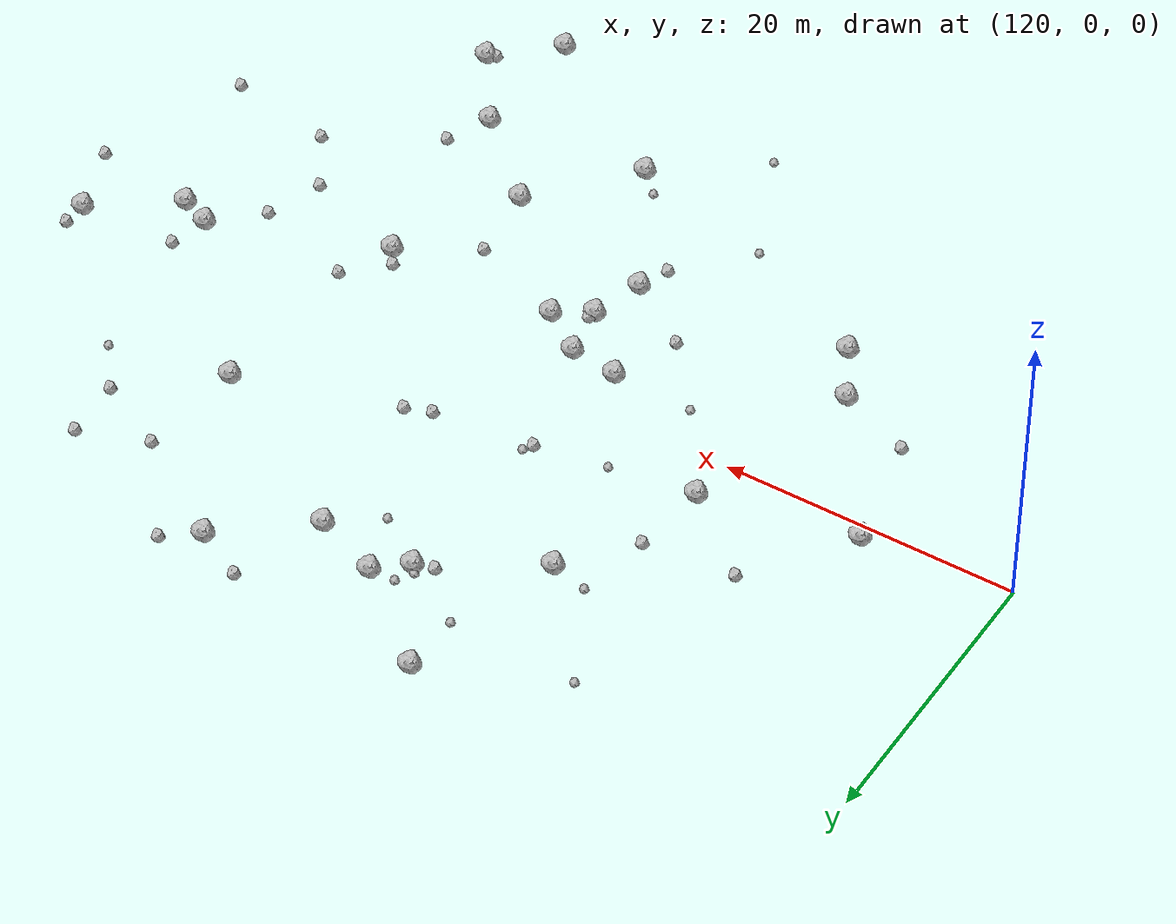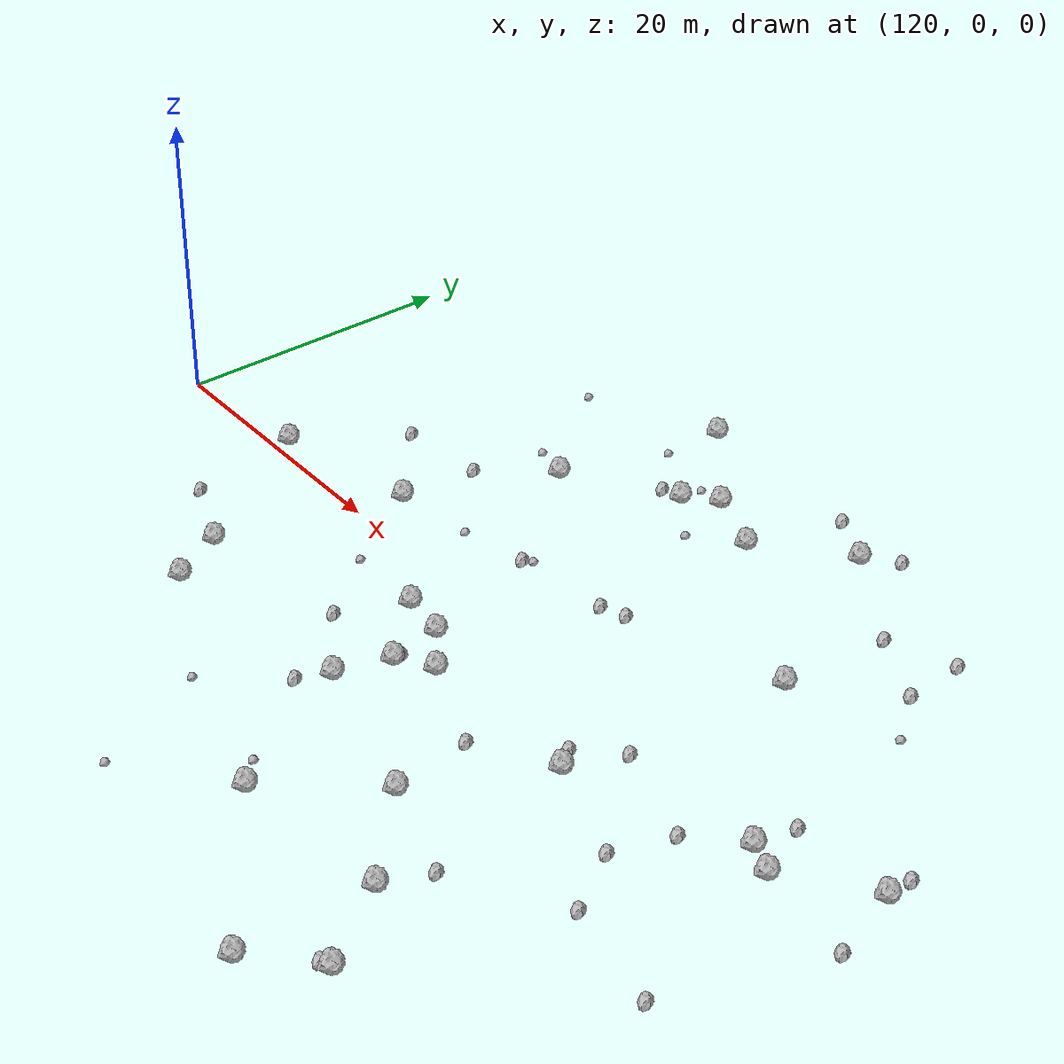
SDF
<sdf version="1.6">
 <world name="default">
  <include><uri>model://sun</uri></include>
  <model name="rock1_4_2">
   <include><uri>model://rock1</uri><pose>170.381376848534 9.950127114190494 0.5 0 0 0</pose></include>
  </model>
  <model name="rock1_4_3">
   <include><uri>model://rock1</uri><pose>158.18441223294488 17.595957075521092 0.5 0 0 0</pose></include>
  </model>
  <model name="rock1_4_4">
   <include><uri>model://rock1</uri><pose>156.5218076970509 -5.668073426327915 0.5 0 0 0</pose></include>
  </model>
  <model name="rock1_4_5">
   <include><uri>model://rock1</uri><pose>150.16187965976636 -3.034354028197857 0.5 0 0 0</pose></include>
  </model>
  <model name="rock1_4_6">
   <include><uri>model://rock1</uri><pose>187.46382854505651 2.0620324148873976 0.5 0 0 0</pose></include>
  </model>
  <model name="rock1_4_7">
   <include><uri>model://rock1</uri><pose>147.19947589870367 24.649829652033148 0.5 0 0 0</pose></include>
  </model>
  <model name="rock1_4_8">
   <include><uri>model://rock1</uri><pose>138.95702651588326 -12.87728538880814 0.5 0 0 0</pose></include>
  </model>
  <model name="rock1_4_9">
   <include><uri>model://rock1</uri><pose>169.7074308208911 -28.31016310644732 0.5 0 0 0</pose></include>
  </model>
  <model name="rock1_4_10">
   <include><uri>model://rock1</uri><pose>158.6004397056147 -20.482836064724115 0.5 0 0 0</pose></include>
  </model>
  <model name="rock1_4_11">
   <include><uri>model://rock1</uri><pose>140.31905976928272 3.2931575944841995 0.5 0 0 0</pose></include>
  </model>
  <model name="rock1_4_12">
   <include><uri>model://rock1</uri><pose>153.1235600156279 -10.853350835858315 0.5 0 0 0</pose></include>
  </model>
  <model name="rock1_4_13">
   <include><uri>model://rock1</uri><pose>136.86845818447063 -9.098250446023755 0.5 0 0 0</pose></include>
  </model>
  <model name="rock1_4_14">
   <include><uri>model://rock1</uri><pose>154.17387334834618 -7.17409651253633 0.5 0 0 0</pose></include>
  </model>
  <model name="rock1_4_15">
   <include><uri>model://rock1</uri><pose>182.11766773886035 -1.890253871768877 0.5 0 0 0</pose></include>
  </model>
  <model name="rock1_4_16">
   <include><uri>model://rock1</uri><pose>179.98008455119358 -0.9772204664680544 0.5 0 0 0</pose></include>
  </model>
  <model name="rock1_4_17">
   <include><uri>model://rock1</uri><pose>173.64259953942684 -24.685192012986832 0.5 0 0 0</pose></include>
  </model>
  <model name="rock1_4_18">
   <include><uri>model://rock1</uri><pose>144.43267978795038 13.145913184470729 0.5 0 0 0</pose></include>
  </model>
  <model name="rock1_4_19">
   <include><uri>model://rock1</uri><pose>168.33201141387565 -5.3194126199743685 0.5 0 0 0</pose></include>
  </model>
  <model name="rock1_4_20">
   <include><uri>model://rock1</uri><pose>164.06891553829743 -13.882914823249209 0.5 0 0 0</pose></include>
  </model>
  <model name="rock1_4_21">
   <include><uri>model://rock1</uri><pose>163.78917582887073 22.26697560733694 0.5 0 0 0</pose></include>
  </model>
  <model name="rock1_4_22">
   <include><uri>model://rock1</uri><pose>151.62502271443546 17.657750049089366 0.5 0 0 0</pose></include>
  </model>
  <model name="rock1_4_23">
   <include><uri>model://rock1</uri><pose>153.52166083365012 -3.5093693097910332 0.5 0 0 0</pose></include>
  </model>
  <model name="rock1_4_24">
   <include><uri>model://rock1</uri><pose>130.04720154644843 1.083188693112234 0.5 0 0 0</pose></include>
  </model>
  <model name="rock1_4_25">
   <include><uri>model://rock1</uri><pose>153.61995004501358 19.38552584998527 0.5 0 0 0</pose></include>
  </model>
  <model name="rock1_4_26">
   <include><uri>model://rock1</uri><pose>169.88694269789 -19.306342626922433 0.5 0 0 0</pose></include>
  </model>
  <model name="rock2_4_0">
   <include><uri>model://rock2</uri><pose>185.63195793710244 -13.34104322427704 0.3 0 0 0</pose></include>
  </model>
  <model name="rock2_4_1">
   <include><uri>model://rock2</uri><pose>169.9230222691477 -1.5824601847833186 0.3 0 0 0</pose></include>
  </model>
  <model name="rock2_4_2">
   <include><uri>model://rock2</uri><pose>150.96970898553283 5.042630227228273 0.3 0 0 0</pose></include>
  </model>
  <model name="rock2_4_3">
   <include><uri>model://rock2</uri><pose>178.24119628090645 -11.912132154696028 0.3 0 0 0</pose></include>
  </model>
  <model name="rock2_4_4">
   <include><uri>model://rock2</uri><pose>140.87311941922508 8.635631358139683 0.3 0 0 0</pose></include>
  </model>
  <model name="rock2_4_5">
   <include><uri>model://rock2</uri><pose>154.26452782485174 -6.668519511228649 0.3 0 0 0</pose></include>
  </model>
  <model name="rock2_4_6">
   <include><uri>model://rock2</uri><pose>167.44467106115582 -4.109714584401424 0.3 0 0 0</pose></include>
  </model>
  <model name="rock2_4_7">
   <include><uri>model://rock2</uri><pose>163.27197288102673 -8.408660062668815 0.3 0 0 0</pose></include>
  </model>
  <model name="rock2_4_8">
   <include><uri>model://rock2</uri><pose>187.44185454282086 3.8233275121150427 0.3 0 0 0</pose></include>
  </model>
  <model name="rock2_4_9">
   <include><uri>model://rock2</uri><pose>180.53449073524598 1.7938342809203967 0.3 0 0 0</pose></include>
  </model>
  <model name="rock2_4_10">
   <include><uri>model://rock2</uri><pose>148.3331556914501 -7.58179820193606 0.3 0 0 0</pose></include>
  </model>
  <model name="rock2_4_11">
   <include><uri>model://rock2</uri><pose>175.64101551698192 -7.891922567104487 0.3 0 0 0</pose></include>
  </model>
  <model name="rock2_4_12">
   <include><uri>model://rock2</uri><pose>175.62062226858743 19.1637469575762 0.3 0 0 0</pose></include>
  </model>
  <model name="rock2_4_13">
   <include><uri>model://rock2</uri><pose>175.95307170900136 14.947341320997083 0.3 0 0 0</pose></include>
  </model>
  <model name="rock2_4_14">
   <include><uri>model://rock2</uri><pose>189.2252362739594 -2.9254529560619886 0.3 0 0 0</pose></include>
  </model>
  <model name="rock2_4_15">
   <include><uri>model://rock2</uri><pose>171.01070475785409 17.48039734492456 0.3 0 0 0</pose></include>
  </model>
  <model name="rock2_4_16">
   <include><uri>model://rock2</uri><pose>165.9172095604398 23.94015201049546 0.3 0 0 0</pose></include>
  </model>
  <model name="rock2_4_17">
   <include><uri>model://rock2</uri><pose>131.69293407887758 -6.96208834798167 0.3 0 0 0</pose></include>
  </model>
  <model name="rock2_4_18">
   <include><uri>model://rock2</uri><pose>150.26772122721604 17.195039492716155 0.3 0 0 0</pose></include>
  </model>
  <model name="rock2_4_19">
   <include><uri>model://rock2</uri><pose>157.80907206739158 5.927075092796265 0.3 0 0 0</pose></include>
  </model>
  <model name="rock2_4_20">
   <include><uri>model://rock2</uri><pose>134.7172531882778 7.953612812321403 0.3 0 0 0</pose></include>
  </model>
  <model name="rock2_4_21">
   <include><uri>model://rock2</uri><pose>152.26888925192839 -13.01598740061052 0.3 0 0 0</pose></include>
  </model>
  <model name="rock2_4_22">
   <include><uri>model://rock2</uri><pose>160.23403360340333 24.06956553146353 0.3 0 0 0</pose></include>
  </model>
  <model name="rock2_4_23">
   <include><uri>model://rock2</uri><pose>172.9708547171882 -24.97686708096127 0.3 0 0 0</pose></include>
  </model>
  <model name="rock2_4_24">
   <include><uri>model://rock2</uri><pose>159.55469202874346 6.549090446193723 0.3 0 0 0</pose></include>
  </model>
  <model name="rock2_4_25">
   <include><uri>model://rock2</uri><pose>176.92172349018736 -3.877349866088373 0.3 0 0 0</pose></include>
  </model>
  <model name="rock2_4_26">
   <include><uri>model://rock2</uri><pose>171.16673697463486 -16.18183684503527 0.3 0 0 0</pose></include>
  </model>
  <model name="rock3_4_0">
   <include><uri>model://rock3</uri><pose>151.79281873732978 19.22363127581165 0.2 0 0 0</pose></include>
  </model>
  <model name="rock3_4_1">
   <include><uri>model://rock3</uri><pose>151.1209135282593 18.09505959003595 0.2 0 0 0</pose></include>
  </model>
  <model name="rock3_4_2">
   <include><uri>model://rock3</uri><pose>178.3603079521175 11.72938071580203 0.2 0 0 0</pose></include>
  </model>
  <model name="rock3_4_3">
   <include><uri>model://rock3</uri><pose>151.90954390363146 -25.80180733249292 0.2 0 0 0</pose></include>
  </model>
  <model name="rock3_4_4">
   <include><uri>model://rock3</uri><pose>155.0535307984097 15.08009460720043 0.2 0 0 0</pose></include>
  </model>
  <model name="rock3_4_5">
   <include><uri>model://rock3</uri><pose>144.45058554025667 -2.95021350995793 0.2 0 0 0</pose></include>
  </model>
  <model name="rock3_4_6">
   <include><uri>model://rock3</uri><pose>141.79630879766597 13.705890314701605 0.2 0 0 0</pose></include>
  </model>
  <model name="rock3_4_7">
   <include><uri>model://rock3</uri><pose>151.35858976464968 5.601343576590963 0.2 0 0 0</pose></include>
  </model>
  <model name="rock3_4_8">
   <include><uri>model://rock3</uri><pose>148.2183551845617 -17.70929147758407 0.2 0 0 0</pose></include>
  </model>
  <model name="rock3_4_9">
   <include><uri>model://rock3</uri><pose>156.9375997934318 -18.939230479876716 0.2 0 0 0</pose></include>
  </model>
  <model name="rock3_4_10">
   <include><uri>model://rock3</uri><pose>147.04964410182228 20.356987486374678 0.2 0 0 0</pose></include>
  </model>
  <model name="rock3_4_11">
   <include><uri>model://rock3</uri><pose>138.20788481700768 20.520100687090874 0.2 0 0 0</pose></include>
  </model>
  <model name="rock3_4_12">
   <include><uri>model://rock3</uri><pose>146.0847522317201 4.089068522877064 0.2 0 0 0</pose></include>
  </model>
 </world>
</sdf>
